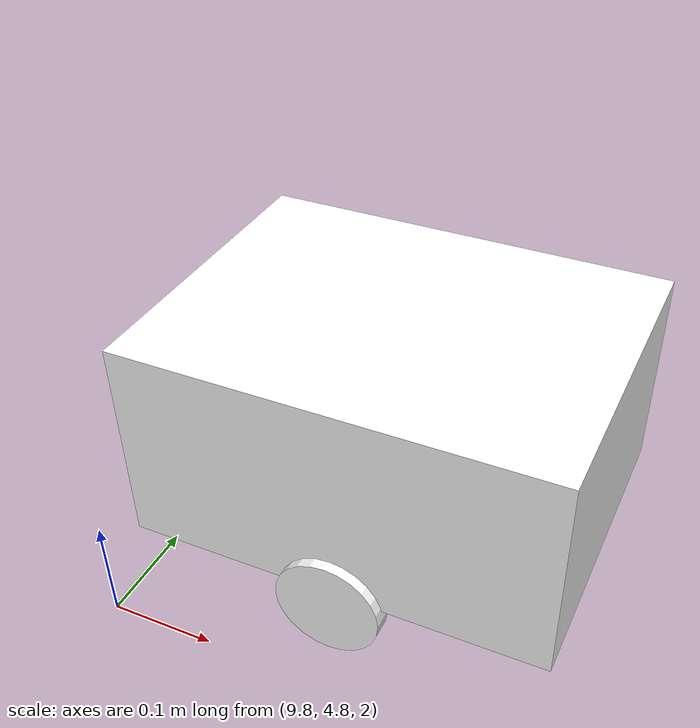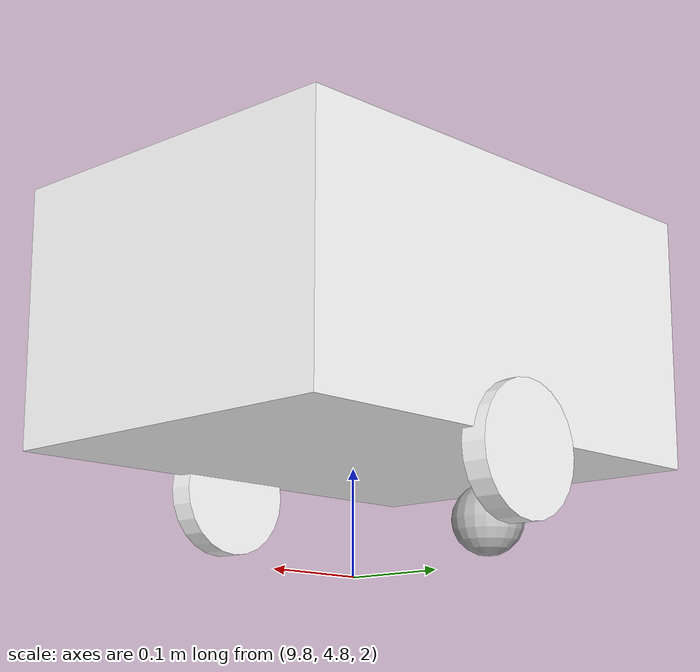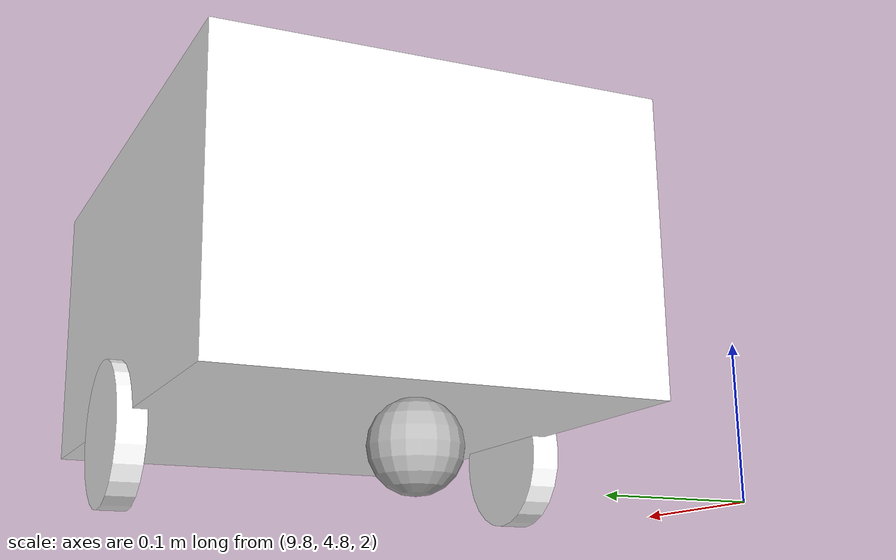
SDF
<?xml version="1.0"?>
<sdf version="1.9">
  <model name="diffbot">
    <pose>10.0 5.0 2.0 0 0 0</pose>

    <!-- base: 底が地面に触れないよう中心を z=0.16 に上げる（底=0.06m） -->
    <link name="base_link">
      <pose>0 0 0.16 0 0 0</pose>
      <inertial>
        <mass>5.0</mass>
        <inertia>
          <ixx>0.1</ixx><ixy>0</ixy><ixz>0</ixz>
          <iyy>0.1</iyy><iyz>0</iyz>
          <izz>0.1</izz>
        </inertia>
      </inertial>
      <collision name="base_col">
        <geometry><box><size>0.4 0.3 0.2</size></box></geometry>
      </collision>
      <visual name="base_vis">
        <geometry><box><size>0.4 0.3 0.2</size></box></geometry>
        <material>
          <ambient>0.9 0.9 0.9 1</ambient>
          <diffuse>1 1 1 1</diffuse>
          <specular>0.2 0.2 0.2 1</specular>
          <emissive>0.02 0.02 0.02 1</emissive>
          <pbr><metal><albedo>1 1 1 1</albedo><metalness>0.0</metalness><roughness>0.4</roughness></metal></pbr>
        </material>
      </visual>
    </link>

    <!-- left wheel（リンクは回転させず、ジオメトリだけ roll=90°） -->
    <link name="left_wheel">
      <pose>0 0.15 0.05 0 0 0</pose>
      <inertial>
        <mass>0.5</mass>
        <inertia><ixx>0.001</ixx><iyy>0.001</iyy><izz>0.001</izz></inertia>
      </inertial>
      <collision name="col">
        <pose>0 0 0 1.5707 0 0</pose>
        <geometry><cylinder><radius>0.05</radius><length>0.02</length></cylinder></geometry>
        <surface><friction><ode><mu>1.2</mu><mu2>1.2</mu2></ode></friction></surface>
      </collision>
      <visual name="vis">
        <pose>0 0 0 1.5707 0 0</pose>
        <geometry><cylinder><radius>0.05</radius><length>0.02</length></cylinder></geometry>
        <material>
          <ambient>0.9 0.9 0.9 1</ambient>
          <diffuse>1 1 1 1</diffuse>
          <specular>0.2 0.2 0.2 1</specular>
          <emissive>0.02 0.02 0.02 1</emissive>
          <pbr><metal><albedo>1 1 1 1</albedo><metalness>0.0</metalness><roughness>0.4</roughness></metal></pbr>
        </material>
      </visual>
    </link>

    <!-- right wheel -->
    <link name="right_wheel">
      <pose>0 -0.15 0.05 0 0 0</pose>
      <inertial>
        <mass>0.5</mass>
        <inertia><ixx>0.001</ixx><iyy>0.001</iyy><izz>0.001</izz></inertia>
      </inertial>
      <collision name="col">
        <pose>0 0 0 1.5707 0 0</pose>
        <geometry><cylinder><radius>0.05</radius><length>0.02</length></cylinder></geometry>
        <surface><friction><ode><mu>1.2</mu><mu2>1.2</mu2></ode></friction></surface>
      </collision>
      <visual name="vis">
        <pose>0 0 0 1.5707 0 0</pose>
        <geometry><cylinder><radius>0.05</radius><length>0.02</length></cylinder></geometry>
        <material>
          <ambient>0.9 0.9 0.9 1</ambient>
          <diffuse>1 1 1 1</diffuse>
          <specular>0.2 0.2 0.2 1</specular>
          <emissive>0.02 0.02 0.02 1</emissive>
          <pbr><metal><albedo>1 1 1 1</albedo><metalness>0.0</metalness><roughness>0.4</roughness></metal></pbr>
        </material>
      </visual>
    </link>

    <!-- caster（床安定用） -->
    <link name="caster">
      <pose>-0.15 0 0.03 0 0 0</pose>
      <inertial><mass>0.1</mass><inertia><ixx>1e-5</ixx><iyy>1e-5</iyy><izz>1e-5</izz></inertia></inertial>
      <collision name="col"><geometry><sphere><radius>0.03</radius></sphere></geometry></collision>
      <visual name="vis"><geometry><sphere><radius>0.03</radius></sphere></geometry></visual>
    </link>

    <!-- joints: Y軸回り -->
    <joint name="left_wheel_joint" type="revolute">
      <parent>base_link</parent><child>left_wheel</child>
      <pose>0 0 0 0 0 0</pose>
      <axis>
        <xyz>0 1 0</xyz>
        <limit><lower>-1e16</lower><upper>1e16</upper></limit>
        <dynamics><damping>0.05</damping></dynamics>
      </axis>
    </joint>
    <joint name="right_wheel_joint" type="revolute">
      <parent>base_link</parent><child>right_wheel</child>
      <pose>0 0 0 0 0 0</pose>
      <axis>
        <xyz>0 1 0</xyz>
        <limit><lower>-1e16</lower><upper>1e16</upper></limit>
        <dynamics><damping>0.05</damping></dynamics>
      </axis>
    </joint>
    <joint name="caster_joint" type="ball">
      <parent>base_link</parent><child>caster</child>
    </joint>

    <!-- DiffDrive -->
    <plugin
      filename="ignition-gazebo-diff-drive-system"
      name="ignition::gazebo::systems::DiffDrive">
      <left_joint>left_wheel_joint</left_joint>
      <right_joint>right_wheel_joint</right_joint>
      <wheel_separation>0.30</wheel_separation>
      <wheel_radius>0.05</wheel_radius>
      <topic>cmd_vel</topic>           <!-- GZ側: /model/diffbot/cmd_vel -->
      <odom_topic>odometry</odom_topic>
      <odom_frame>odom</odom_frame>
      <robot_base_frame>base_link</robot_base_frame>
      <odom_publisher>true</odom_publisher>
      <max_linear_velocity>1.0</max_linear_velocity>
      <max_angular_velocity>2.0</max_angular_velocity>
      <use_velocity_commands>true</use_velocity_commands>
    </plugin>

    <!-- Odometry（保険） -->
    <plugin
      filename="ignition-gazebo-odometry-publisher-system"
      name="ignition::gazebo::systems::OdometryPublisher">
      <odom_topic>odometry</odom_topic>
      <world_frame>world</world_frame>
      <odom_frame>odom</odom_frame>
      <robot_base_frame>base_link</robot_base_frame>
      <publish_tf>true</publish_tf>
      <publish_odom>true</publish_odom>
    </plugin>
  </model>
</sdf>
